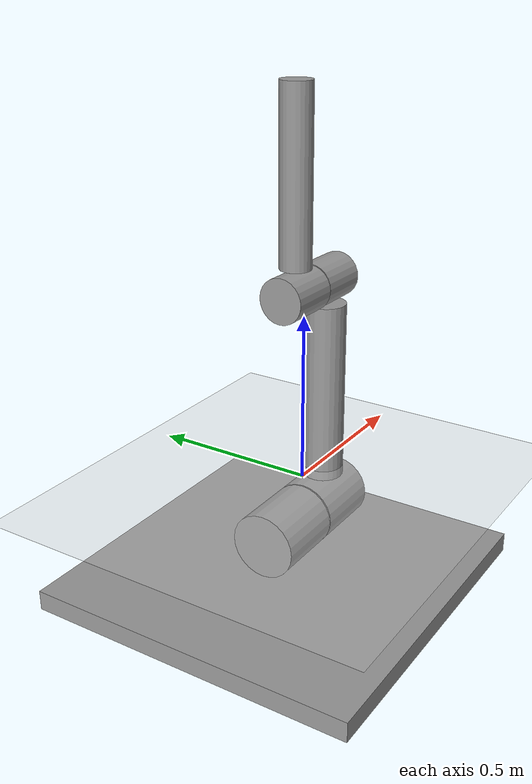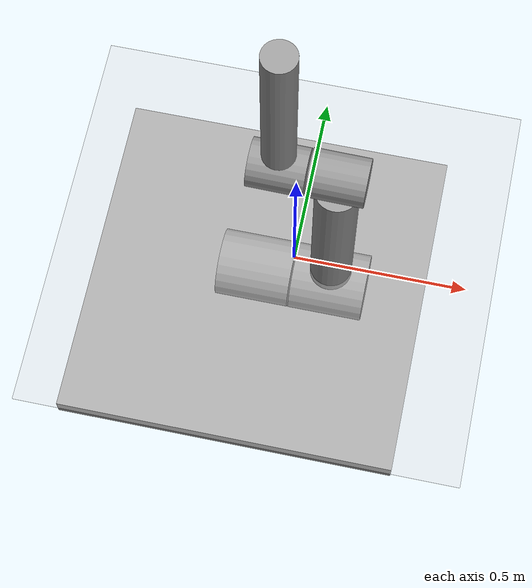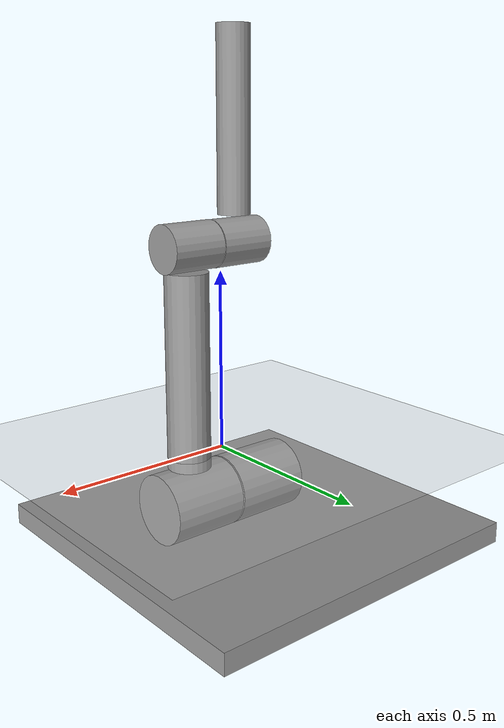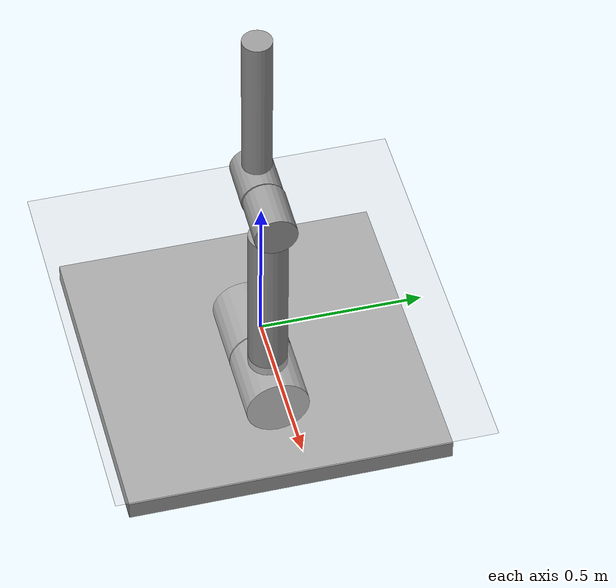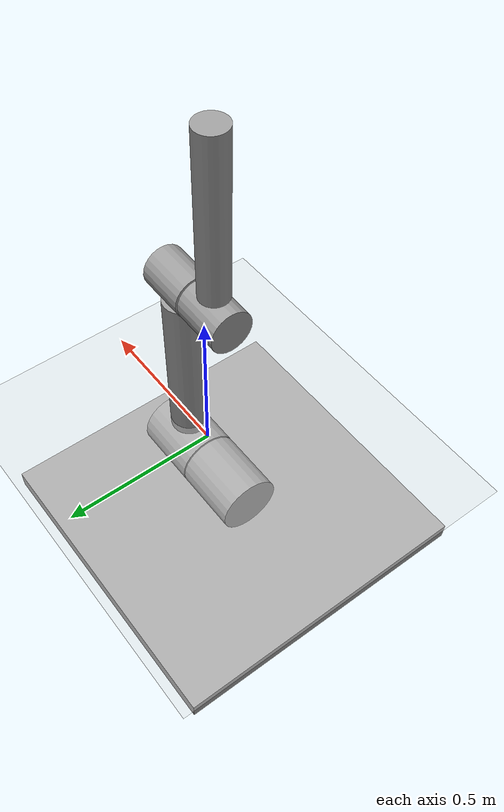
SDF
<?xml version="1.0" ?>
<sdf version="1.6">
  <world name="default">

	<!-- A global light source -->
	<include>
	  <uri>model://sun</uri>
	</include>

	<!-- A ground plane -->
	<include>
	  <uri>model://ground_plane</uri>
	</include>

<model name='myownArm'>
    <link name='Bodenplatte'>
      <pose frame=''>-0.110501 0 -0.267273 0 -0 0</pose>
      <inertial>
        <mass>10000</mass>
        <inertia>
          <ixx>836.333</ixx>
          <ixy>0</ixy>
          <ixz>0</ixz>
          <iyy>836.333</iyy>
          <iyz>0</iyz>
          <izz>1666.67</izz>
        </inertia>
        <pose frame=''>0 0 0 0 -0 0</pose>
      </inertial>
      <self_collide>0</self_collide>
      <kinematic>0</kinematic>
      <visual name='visual'>
        <pose frame=''>0 0 0 0 -0 0</pose>
        <geometry>
          <box>
            <size>1 1 0.06</size>
          </box>
        </geometry>
        <material>
          <lighting>1</lighting>
          <script>
            <uri>file://media/materials/scripts/gazebo.material</uri>
            <name>Gazebo/Grey</name>
          </script>
          <shader type='vertex'>
            <normal_map>__default__</normal_map>
          </shader>
          <ambient>0.3 0.3 0.3 1</ambient>
          <diffuse>0.7 0.7 0.7 1</diffuse>
          <specular>0.01 0.01 0.01 1</specular>
          <emissive>0 0 0 1</emissive>
        </material>
        <transparency>0</transparency>
        <cast_shadows>1</cast_shadows>
      </visual>
      <collision name='collision'>
        <laser_retro>0</laser_retro>
        <max_contacts>10</max_contacts>
        <pose frame=''>0 0 0 0 -0 0</pose>
        <geometry>
          <box>
            <size>1 1 0.06</size>
          </box>
        </geometry>
        <surface>
          <friction>
            <ode>
              <mu>1</mu>
              <mu2>1</mu2>
              <fdir1>0 0 0</fdir1>
              <slip1>0</slip1>
              <slip2>0</slip2>
            </ode>
            <torsional>
              <coefficient>1</coefficient>
              <patch_radius>0</patch_radius>
              <surface_radius>0</surface_radius>
              <use_patch_radius>1</use_patch_radius>
              <ode>
                <slip>0</slip>
              </ode>
            </torsional>
          </friction>
          <bounce>
            <restitution_coefficient>0</restitution_coefficient>
            <threshold>1e+06</threshold>
          </bounce>
          <contact>
            <collide_without_contact>0</collide_without_contact>
            <collide_without_contact_bitmask>1</collide_without_contact_bitmask>
            <collide_bitmask>1</collide_bitmask>
            <ode>
              <soft_cfm>0</soft_cfm>
              <soft_erp>0.2</soft_erp>
              <kp>1e+13</kp>
              <kd>1</kd>
              <max_vel>0.01</max_vel>
              <min_depth>0</min_depth>
            </ode>
            <bullet>
              <split_impulse>1</split_impulse>
              <split_impulse_penetration_threshold>-0.01</split_impulse_penetration_threshold>
              <soft_cfm>0</soft_cfm>
              <soft_erp>0.2</soft_erp>
              <kp>1e+13</kp>
              <kd>1</kd>
            </bullet>
          </contact>
        </surface>
      </collision>
    </link>
    <link name='GrossesGelenk1'>
      <pose frame=''>-0.110501 0 -0.129742 3.13788 1.57079 3.13788</pose>
      <inertial>
        <mass>13</mass>
        <inertia>
          <ixx>1.89583</ixx>
          <ixy>0</ixy>
          <ixz>0</ixz>
          <iyy>1.89583</iyy>
          <iyz>0</iyz>
          <izz>1.625</izz>
        </inertia>
        <pose frame=''>0 0 0 0 -0 0</pose>
      </inertial>
      <self_collide>0</self_collide>
      <kinematic>0</kinematic>
      <visual name='visual'>
        <pose frame=''>0 0 0 0 -0 0</pose>
        <geometry>
          <cylinder>
            <radius>0.0975</radius>
            <length>0.215</length>
          </cylinder>
        </geometry>
        <material>
          <lighting>1</lighting>
          <script>
            <uri>file://media/materials/scripts/gazebo.material</uri>
            <name>Gazebo/Grey</name>
          </script>
          <shader type='vertex'>
            <normal_map>__default__</normal_map>
          </shader>
          <ambient>0.3 0.3 0.3 1</ambient>
          <diffuse>0.7 0.7 0.7 1</diffuse>
          <specular>0.01 0.01 0.01 1</specular>
          <emissive>0 0 0 1</emissive>
        </material>
        <transparency>0</transparency>
        <cast_shadows>1</cast_shadows>
      </visual>
      <collision name='collision'>
        <laser_retro>0</laser_retro>
        <max_contacts>10</max_contacts>
        <pose frame=''>0 0 0 0 -0 0</pose>
        <geometry>
          <cylinder>
            <radius>0.0975</radius>
            <length>0.215</length>
          </cylinder>
        </geometry>
        <surface>
          <friction>
            <ode>
              <mu>1</mu>
              <mu2>1</mu2>
              <fdir1>0 0 0</fdir1>
              <slip1>0</slip1>
              <slip2>0</slip2>
            </ode>
            <torsional>
              <coefficient>1</coefficient>
              <patch_radius>0</patch_radius>
              <surface_radius>0</surface_radius>
              <use_patch_radius>1</use_patch_radius>
              <ode>
                <slip>0</slip>
              </ode>
            </torsional>
          </friction>
          <bounce>
            <restitution_coefficient>0</restitution_coefficient>
            <threshold>1e+06</threshold>
          </bounce>
          <contact>
            <collide_without_contact>0</collide_without_contact>
            <collide_without_contact_bitmask>1</collide_without_contact_bitmask>
            <collide_bitmask>1</collide_bitmask>
            <ode>
              <soft_cfm>0</soft_cfm>
              <soft_erp>0.2</soft_erp>
              <kp>1e+13</kp>
              <kd>1</kd>
              <max_vel>0.01</max_vel>
              <min_depth>0</min_depth>
            </ode>
            <bullet>
              <split_impulse>1</split_impulse>
              <split_impulse_penetration_threshold>-0.01</split_impulse_penetration_threshold>
              <soft_cfm>0</soft_cfm>
              <soft_erp>0.2</soft_erp>
              <kp>1e+13</kp>
              <kd>1</kd>
            </bullet>
          </contact>
        </surface>
      </collision>
    </link>
    <link name='GrossesGelenk2'>
      <pose frame=''>0.108856 -0 -0.129742 3.13353 1.57079 3.13353</pose>
      <inertial>
        <mass>13</mass>
        <inertia>
          <ixx>1.89583</ixx>
          <ixy>0</ixy>
          <ixz>0</ixz>
          <iyy>1.89583</iyy>
          <iyz>0</iyz>
          <izz>1.625</izz>
        </inertia>
        <pose frame=''>0 0 0 0 -0 0</pose>
      </inertial>
      <self_collide>0</self_collide>
      <kinematic>0</kinematic>
      <visual name='visual'>
        <pose frame=''>0 0 0 0 -0 0</pose>
        <geometry>
          <cylinder>
            <radius>0.0975</radius>
            <length>0.215</length>
          </cylinder>
        </geometry>
        <material>
          <lighting>1</lighting>
          <script>
            <uri>file://media/materials/scripts/gazebo.material</uri>
            <name>Gazebo/Grey</name>
          </script>
          <shader type='vertex'>
            <normal_map>__default__</normal_map>
          </shader>
          <ambient>0.3 0.3 0.3 1</ambient>
          <diffuse>0.7 0.7 0.7 1</diffuse>
          <specular>0.01 0.01 0.01 1</specular>
          <emissive>0 0 0 1</emissive>
        </material>
        <transparency>0</transparency>
        <cast_shadows>1</cast_shadows>
      </visual>
      <collision name='collision'>
        <laser_retro>0</laser_retro>
        <max_contacts>10</max_contacts>
        <pose frame=''>0 0 0 0 -0 0</pose>
        <geometry>
          <cylinder>
            <radius>0.0975</radius>
            <length>0.215</length>
          </cylinder>
        </geometry>
        <surface>
          <friction>
            <ode>
              <mu>1</mu>
              <mu2>1</mu2>
              <fdir1>0 0 0</fdir1>
              <slip1>0</slip1>
              <slip2>0</slip2>
            </ode>
            <torsional>
              <coefficient>1</coefficient>
              <patch_radius>0</patch_radius>
              <surface_radius>0</surface_radius>
              <use_patch_radius>1</use_patch_radius>
              <ode>
                <slip>0</slip>
              </ode>
            </torsional>
          </friction>
          <bounce>
            <restitution_coefficient>0</restitution_coefficient>
            <threshold>1e+06</threshold>
          </bounce>
          <contact>
            <collide_without_contact>0</collide_without_contact>
            <collide_without_contact_bitmask>1</collide_without_contact_bitmask>
            <collide_bitmask>1</collide_bitmask>
            <ode>
              <soft_cfm>0</soft_cfm>
              <soft_erp>0.2</soft_erp>
              <kp>1e+13</kp>
              <kd>1</kd>
              <max_vel>0.01</max_vel>
              <min_depth>0</min_depth>
            </ode>
            <bullet>
              <split_impulse>1</split_impulse>
              <split_impulse_penetration_threshold>-0.01</split_impulse_penetration_threshold>
              <soft_cfm>0</soft_cfm>
              <soft_erp>0.2</soft_erp>
              <kp>1e+13</kp>
              <kd>1</kd>
            </bullet>
          </contact>
        </surface>
      </collision>
    </link>
    <link name='MittleresGelenk1'>
      <pose frame=''>-0.047148 -0.00074 0.576617 3.01682 1.56535 3.00517</pose>
      <inertial>
        <mass>5.27</mass>
        <inertia>
          <ixx>1.89583</ixx>
          <ixy>0</ixy>
          <ixz>0</ixz>
          <iyy>1.89583</iyy>
          <iyz>0</iyz>
          <izz>1.625</izz>
        </inertia>
        <pose frame=''>0 0 0 0 -0 0</pose>
      </inertial>
      <self_collide>0</self_collide>
      <kinematic>0</kinematic>
      <visual name='visual'>
        <pose frame=''>0 0 0 0 -0 0</pose>
        <geometry>
          <cylinder>
            <radius>0.065</radius>
            <length>0.152</length>
          </cylinder>
        </geometry>
        <material>
          <lighting>1</lighting>
          <script>
            <uri>file://media/materials/scripts/gazebo.material</uri>
            <name>Gazebo/Grey</name>
          </script>
          <shader type='vertex'>
            <normal_map>__default__</normal_map>
          </shader>
          <ambient>0.3 0.3 0.3 1</ambient>
          <diffuse>0.7 0.7 0.7 1</diffuse>
          <specular>0.01 0.01 0.01 1</specular>
          <emissive>0 0 0 1</emissive>
        </material>
        <transparency>0</transparency>
        <cast_shadows>1</cast_shadows>
      </visual>
      <collision name='collision'>
        <laser_retro>0</laser_retro>
        <max_contacts>10</max_contacts>
        <pose frame=''>0 0 0 0 -0 0</pose>
        <geometry>
          <cylinder>
            <radius>0.065</radius>
            <length>0.152</length>
          </cylinder>
        </geometry>
        <surface>
          <friction>
            <ode>
              <mu>1</mu>
              <mu2>1</mu2>
              <fdir1>0 0 0</fdir1>
              <slip1>0</slip1>
              <slip2>0</slip2>
            </ode>
            <torsional>
              <coefficient>1</coefficient>
              <patch_radius>0</patch_radius>
              <surface_radius>0</surface_radius>
              <use_patch_radius>1</use_patch_radius>
              <ode>
                <slip>0</slip>
              </ode>
            </torsional>
          </friction>
          <bounce>
            <restitution_coefficient>0</restitution_coefficient>
            <threshold>1e+06</threshold>
          </bounce>
          <contact>
            <collide_without_contact>0</collide_without_contact>
            <collide_without_contact_bitmask>1</collide_without_contact_bitmask>
            <collide_bitmask>1</collide_bitmask>
            <ode>
              <soft_cfm>0</soft_cfm>
              <soft_erp>0.2</soft_erp>
              <kp>1e+13</kp>
              <kd>1</kd>
              <max_vel>0.01</max_vel>
              <min_depth>0</min_depth>
            </ode>
            <bullet>
              <split_impulse>1</split_impulse>
              <split_impulse_penetration_threshold>-0.01</split_impulse_penetration_threshold>
              <soft_cfm>0</soft_cfm>
              <soft_erp>0.2</soft_erp>
              <kp>1e+13</kp>
              <kd>1</kd>
            </bullet>
          </contact>
        </surface>
      </collision>
    </link>
    <link name='MittleresGelenk2'>
      <pose frame=''>0.109117 -3.6e-05 0.576944 3.01682 1.56535 3.00517</pose>
      <inertial>
        <mass>5.27</mass>
        <inertia>
          <ixx>1.89583</ixx>
          <ixy>0</ixy>
          <ixz>0</ixz>
          <iyy>1.89583</iyy>
          <iyz>0</iyz>
          <izz>1.625</izz>
        </inertia>
        <pose frame=''>0 0 0 0 -0 0</pose>
      </inertial>
      <self_collide>0</self_collide>
      <kinematic>0</kinematic>
      <visual name='visual'>
        <pose frame=''>0 0 0 0 -0 0</pose>
        <geometry>
          <cylinder>
            <radius>0.065</radius>
            <length>0.152</length>
          </cylinder>
        </geometry>
        <material>
          <lighting>1</lighting>
          <script>
            <uri>file://media/materials/scripts/gazebo.material</uri>
            <name>Gazebo/Grey</name>
          </script>
          <shader type='vertex'>
            <normal_map>__default__</normal_map>
          </shader>
          <ambient>0.3 0.3 0.3 1</ambient>
          <diffuse>0.7 0.7 0.7 1</diffuse>
          <specular>0.01 0.01 0.01 1</specular>
          <emissive>0 0 0 1</emissive>
        </material>
        <transparency>0</transparency>
        <cast_shadows>1</cast_shadows>
      </visual>
      <collision name='collision'>
        <laser_retro>0</laser_retro>
        <max_contacts>10</max_contacts>
        <pose frame=''>0 0 0 0 -0 0</pose>
        <geometry>
          <cylinder>
            <radius>0.065</radius>
            <length>0.152</length>
          </cylinder>
        </geometry>
        <surface>
          <friction>
            <ode>
              <mu>1</mu>
              <mu2>1</mu2>
              <fdir1>0 0 0</fdir1>
              <slip1>0</slip1>
              <slip2>0</slip2>
            </ode>
            <torsional>
              <coefficient>1</coefficient>
              <patch_radius>0</patch_radius>
              <surface_radius>0</surface_radius>
              <use_patch_radius>1</use_patch_radius>
              <ode>
                <slip>0</slip>
              </ode>
            </torsional>
          </friction>
          <bounce>
            <restitution_coefficient>0</restitution_coefficient>
            <threshold>1e+06</threshold>
          </bounce>
          <contact>
            <collide_without_contact>0</collide_without_contact>
            <collide_without_contact_bitmask>1</collide_without_contact_bitmask>
            <collide_bitmask>1</collide_bitmask>
            <ode>
              <soft_cfm>0</soft_cfm>
              <soft_erp>0.2</soft_erp>
              <kp>1e+13</kp>
              <kd>1</kd>
              <max_vel>0.01</max_vel>
              <min_depth>0</min_depth>
            </ode>
            <bullet>
              <split_impulse>1</split_impulse>
              <split_impulse_penetration_threshold>-0.01</split_impulse_penetration_threshold>
              <soft_cfm>0</soft_cfm>
              <soft_erp>0.2</soft_erp>
              <kp>1e+13</kp>
              <kd>1</kd>
            </bullet>
          </contact>
        </surface>
      </collision>
    </link>
    <link name='Oberschwinge'>
      <pose frame=''>-0.047148 -0.00074 0.892871 0 -0 0</pose>
      <inertial>
        <mass>1.62</mass>
        <inertia>
          <ixx>0.0329037</ixx>
          <ixy>0</ixy>
          <ixz>0</ixz>
          <iyy>0.0329037</iyy>
          <iyz>0</iyz>
          <izz>0.00164025</izz>
        </inertia>
        <pose frame=''>0 0 0 0 -0 0</pose>
      </inertial>
      <self_collide>0</self_collide>
      <kinematic>0</kinematic>
      <visual name='visual'>
        <pose frame=''>0 0 0 0 -0 0</pose>
        <geometry>
          <cylinder>
            <radius>0.045</radius>
            <length>0.4875</length>
          </cylinder>
        </geometry>
        <material>
          <lighting>1</lighting>
          <script>
            <uri>file://media/materials/scripts/gazebo.material</uri>
            <name>Gazebo/Grey</name>
          </script>
          <shader type='vertex'>
            <normal_map>__default__</normal_map>
          </shader>
          <ambient>0.3 0.3 0.3 1</ambient>
          <diffuse>0.7 0.7 0.7 1</diffuse>
          <specular>0.01 0.01 0.01 1</specular>
          <emissive>0 0 0 1</emissive>
        </material>
        <transparency>0</transparency>
        <cast_shadows>1</cast_shadows>
      </visual>
      <collision name='collision'>
        <laser_retro>0</laser_retro>
        <max_contacts>10</max_contacts>
        <pose frame=''>0 0 0 0 -0 0</pose>
        <geometry>
          <cylinder>
            <radius>0.045</radius>
            <length>0.4875</length>
          </cylinder>
        </geometry>
        <surface>
          <friction>
            <ode>
              <mu>1</mu>
              <mu2>1</mu2>
              <fdir1>0 0 0</fdir1>
              <slip1>0</slip1>
              <slip2>0</slip2>
            </ode>
            <torsional>
              <coefficient>1</coefficient>
              <patch_radius>0</patch_radius>
              <surface_radius>0</surface_radius>
              <use_patch_radius>1</use_patch_radius>
              <ode>
                <slip>0</slip>
              </ode>
            </torsional>
          </friction>
          <bounce>
            <restitution_coefficient>0</restitution_coefficient>
            <threshold>1e+06</threshold>
          </bounce>
          <contact>
            <collide_without_contact>0</collide_without_contact>
            <collide_without_contact_bitmask>1</collide_without_contact_bitmask>
            <collide_bitmask>1</collide_bitmask>
            <ode>
              <soft_cfm>0</soft_cfm>
              <soft_erp>0.2</soft_erp>
              <kp>1e+13</kp>
              <kd>1</kd>
              <max_vel>0.01</max_vel>
              <min_depth>0</min_depth>
            </ode>
            <bullet>
              <split_impulse>1</split_impulse>
              <split_impulse_penetration_threshold>-0.01</split_impulse_penetration_threshold>
              <soft_cfm>0</soft_cfm>
              <soft_erp>0.2</soft_erp>
              <kp>1e+13</kp>
              <kd>1</kd>
            </bullet>
          </contact>
        </surface>
      </collision>
    </link>
    <link name='Unterschwinge'>
      <pose frame=''>0.108856 -0.005839 0.239161 0 -0 0</pose>
      <inertial>
        <mass>3.395</mass>
        <inertia>
          <ixx>0.495104</ixx>
          <ixy>0</ixy>
          <ixz>0</ixz>
          <iyy>0.495104</iyy>
          <iyz>0</iyz>
          <izz>0.424375</izz>
        </inertia>
        <pose frame=''>0 0 0 0 -0 0</pose>
      </inertial>
      <self_collide>0</self_collide>
      <kinematic>0</kinematic>
      <visual name='visual'>
        <pose frame=''>0 0 0 0 -0 0</pose>
        <geometry>
          <cylinder>
            <radius>0.06</radius>
            <length>0.542</length>
          </cylinder>
        </geometry>
        <material>
          <lighting>1</lighting>
          <script>
            <uri>file://media/materials/scripts/gazebo.material</uri>
            <name>Gazebo/Grey</name>
          </script>
          <shader type='vertex'>
            <normal_map>__default__</normal_map>
          </shader>
          <ambient>0.3 0.3 0.3 1</ambient>
          <diffuse>0.7 0.7 0.7 1</diffuse>
          <specular>0.01 0.01 0.01 1</specular>
          <emissive>0 0 0 1</emissive>
        </material>
        <transparency>0</transparency>
        <cast_shadows>1</cast_shadows>
      </visual>
      <collision name='collision'>
        <laser_retro>0</laser_retro>
        <max_contacts>10</max_contacts>
        <pose frame=''>0 0 0 0 -0 0</pose>
        <geometry>
          <cylinder>
            <radius>0.06</radius>
            <length>0.542</length>
          </cylinder>
        </geometry>
        <surface>
          <friction>
            <ode>
              <mu>1</mu>
              <mu2>1</mu2>
              <fdir1>0 0 0</fdir1>
              <slip1>0</slip1>
              <slip2>0</slip2>
            </ode>
            <torsional>
              <coefficient>1</coefficient>
              <patch_radius>0</patch_radius>
              <surface_radius>0</surface_radius>
              <use_patch_radius>1</use_patch_radius>
              <ode>
                <slip>0</slip>
              </ode>
            </torsional>
          </friction>
          <bounce>
            <restitution_coefficient>0</restitution_coefficient>
            <threshold>1e+06</threshold>
          </bounce>
          <contact>
            <collide_without_contact>0</collide_without_contact>
            <collide_without_contact_bitmask>1</collide_without_contact_bitmask>
            <collide_bitmask>1</collide_bitmask>
            <ode>
              <soft_cfm>0</soft_cfm>
              <soft_erp>0.2</soft_erp>
              <kp>1e+13</kp>
              <kd>1</kd>
              <max_vel>0.01</max_vel>
              <min_depth>0</min_depth>
            </ode>
            <bullet>
              <split_impulse>1</split_impulse>
              <split_impulse_penetration_threshold>-0.01</split_impulse_penetration_threshold>
              <soft_cfm>0</soft_cfm>
              <soft_erp>0.2</soft_erp>
              <kp>1e+13</kp>
              <kd>1</kd>
            </bullet>
          </contact>
        </surface>
      </collision>
    </link>

	<joint name='Gross_Bodenplatte' type='revolute'>
      <parent>Bodenplatte</parent>
      <child>GrossesGelenk1</child>
      <pose frame=''>0 0 0 0 -0 0</pose>
      <axis>
        <xyz>1 0 0</xyz>
        <use_parent_model_frame>0</use_parent_model_frame>
        <limit>
          <lower>-1e+16</lower>
          <upper>1e+16</upper>
          <effort>-1</effort>
          <velocity>-1</velocity>
        </limit>
        <dynamics>
          <spring_reference>0</spring_reference>
          <spring_stiffness>0</spring_stiffness>
          <damping>0</damping>
          <friction>0</friction>
        </dynamics>
      </axis>
      <physics>
        <ode>
          <limit>
            <cfm>0</cfm>
            <erp>0.2</erp>
          </limit>
          <suspension>
            <cfm>0</cfm>
            <erp>0.2</erp>
          </suspension>
        </ode>
      </physics>
    </joint>

    <joint name='Gross_Unterschwinge' type='fixed'>
      <parent>GrossesGelenk2</parent>
      <child>Unterschwinge</child>
      <pose frame=''>0 0 0 0 -0 0</pose>
      <physics>
        <ode>
          <limit>
            <cfm>0</cfm>
            <erp>0.2</erp>
          </limit>
          <suspension>
            <cfm>0</cfm>
            <erp>0.2</erp>
          </suspension>
        </ode>
      </physics>
    </joint>
    <joint name='GrossesGelenkLink' type='fixed'>
      <parent>GrossesGelenk1</parent>
      <child>GrossesGelenk2</child>
	  <pose frame=''>0 0 0 0 -0 0</pose>
      <physics>
        <ode>
          <limit>
            <cfm>0</cfm>
            <erp>0.2</erp>
          </limit>
          <suspension>
            <cfm>0</cfm>
            <erp>0.2</erp>
          </suspension>
        </ode>
      </physics>
	</joint>
    <joint name='Mittel_Oberschwinge' type='fixed'>
      <parent>MittleresGelenk1</parent>
      <child>Oberschwinge</child>
      <pose frame=''>0 0 0 0 -0 0</pose>
      <physics>
        <ode>
          <limit>
            <cfm>0</cfm>
            <erp>0.2</erp>
          </limit>
          <suspension>
            <cfm>0</cfm>
            <erp>0.2</erp>
          </suspension>
        </ode>
      </physics>
    </joint>
	<joint name='MittleresGelenkLink' type='fixed'>
      <parent>MittleresGelenk1</parent>
      <child>MittleresGelenk2</child>
	  <pose frame=''>0 0 0 0 -0 0</pose>
      <physics>
        <ode>
          <limit>
            <cfm>0</cfm>
            <erp>0.2</erp>
          </limit>
          <suspension>
            <cfm>0</cfm>
            <erp>0.2</erp>
          </suspension>
        </ode>
      </physics>
	</joint>
    <joint name='Unterschwinge_Mittel' type='fixed'>
      <parent>Unterschwinge</parent>
      <child>MittleresGelenk2</child>
      <pose frame=''>0 0 0 0 -0 0</pose>
      <physics>
        <ode>
          <limit>
            <cfm>0</cfm>
            <erp>0.2</erp>
          </limit>
          <suspension>
            <cfm>0</cfm>
            <erp>0.2</erp>
          </suspension>
        </ode>
      </physics>
    </joint>
    <static>0</static>
    <allow_auto_disable>1</allow_auto_disable>
    <plugin name='arm_control' filename='libmyarm_plugin.so'/>
  </model>
  </world>
</sdf>
